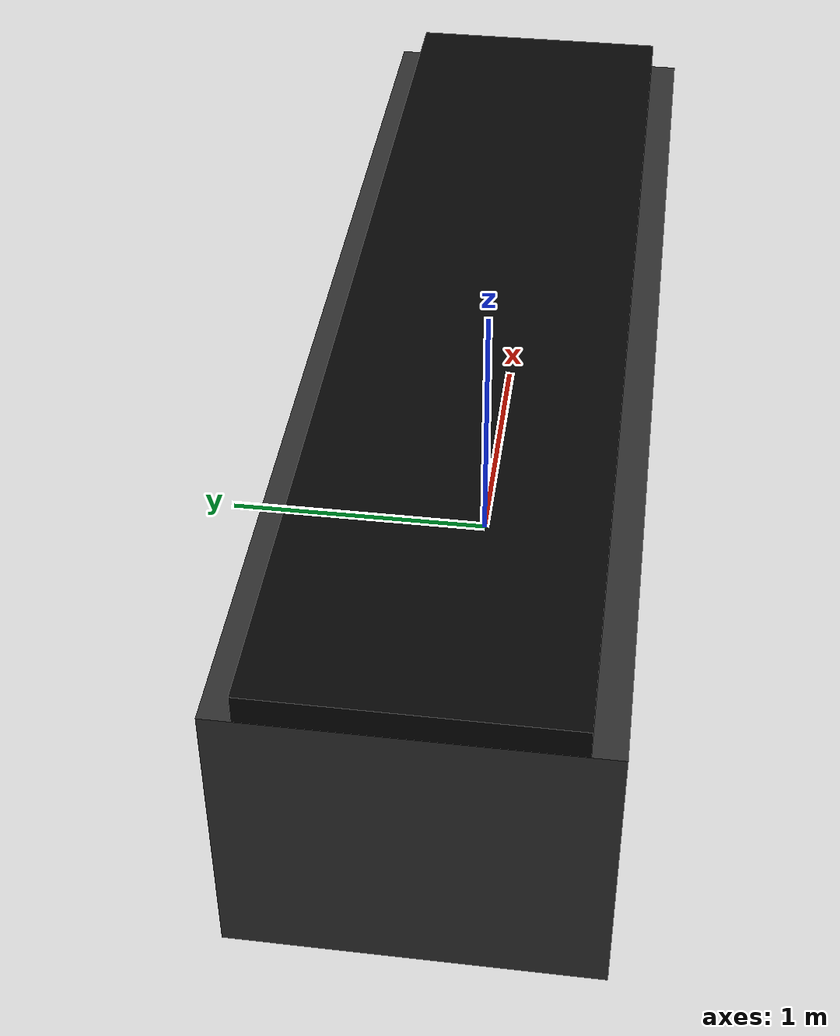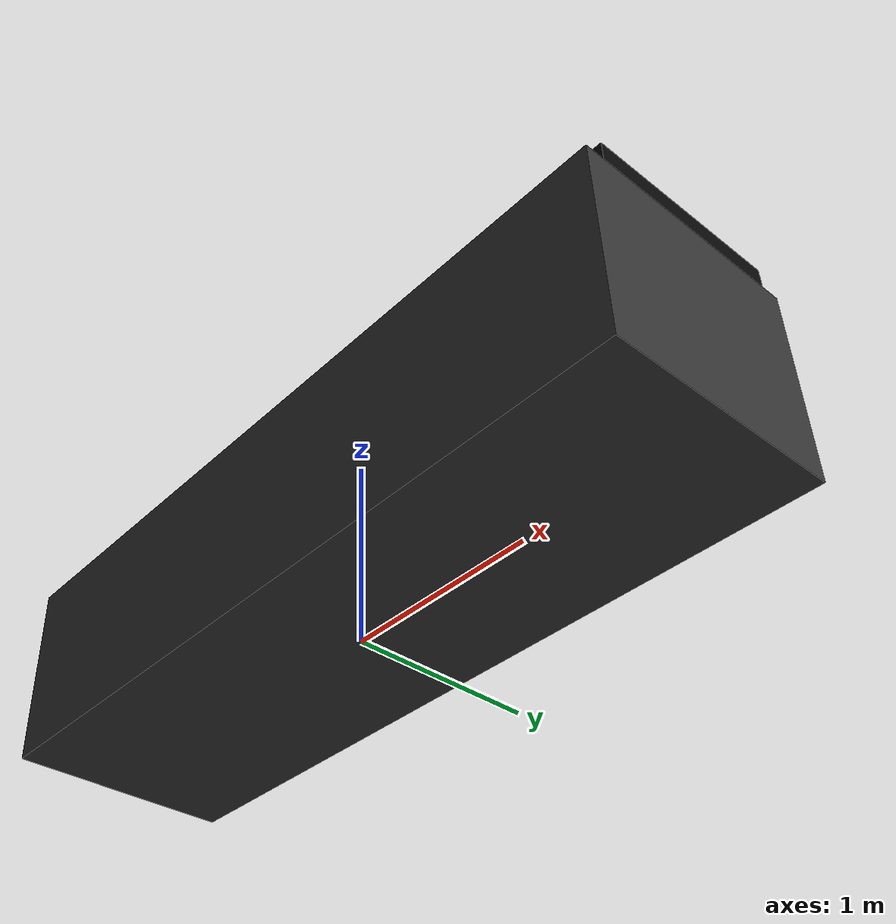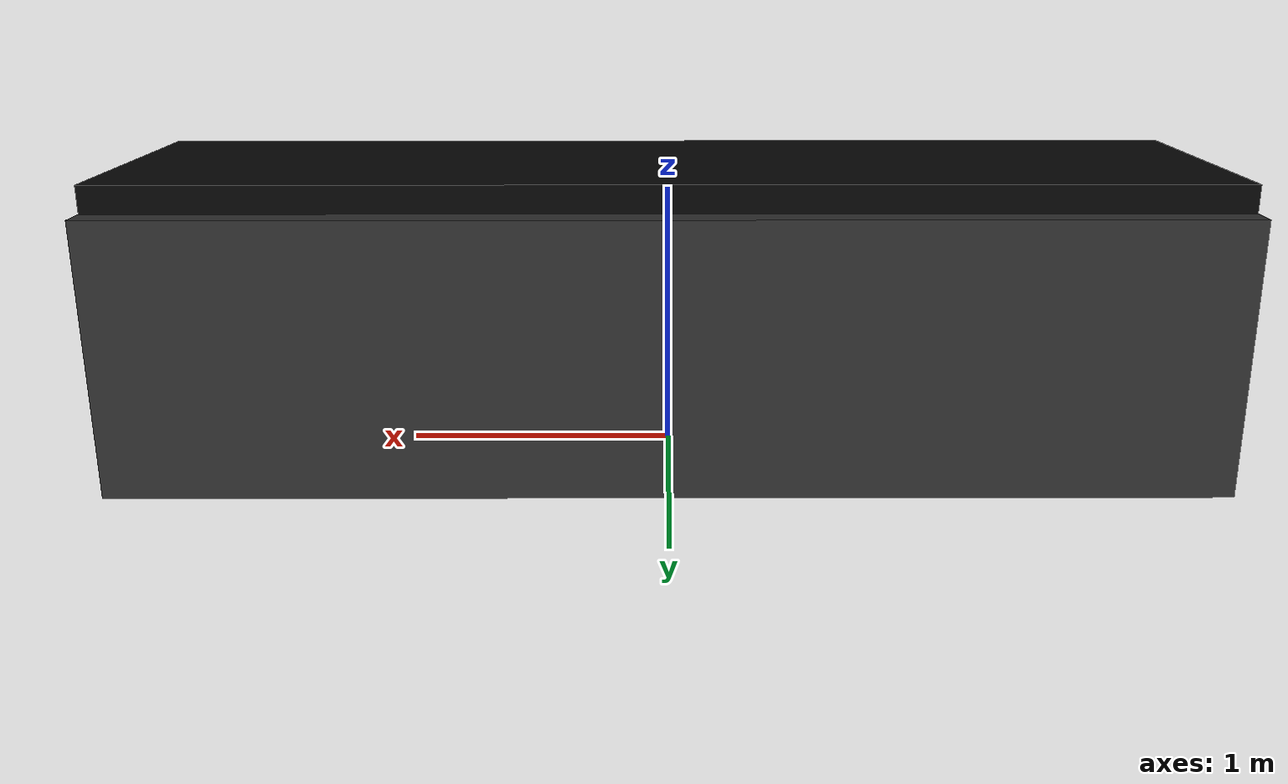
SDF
<?xml version="1.0"?>

<sdf version="1.9">

  <!-- =========================================================
       CONVEYOR MODEL
       Equipment ID: CV-001
       ========================================================= -->

  <model name="CV-001">

<static>true</static>

    <link name="frame">

      <pose>0 0 0.5 0 0 0</pose>

      <visual name="frame_visual">

        <geometry>

          <box>
            <size>4.0 1.2 1.0</size>
          </box>

        </geometry>
	<material>
    <ambient>0.12 0.12 0.12 1</ambient>
    <diffuse>0.20 0.20 0.20 1</diffuse>
    <specular>0.35 0.35 0.35 1</specular>
  </material>
      </visual>

      <collision name="frame_collision">

        <geometry>

          <box>
            <size>4.0 1.2 1.0</size>
          </box>

        </geometry>

      </collision>

    </link>

    <link name="belt">

      <pose>0 0 1.05 0 0 0</pose>

      <visual name="belt_visual">

        <geometry>

          <box>
            <size>4.0 1.0 0.1</size>
          </box>

        </geometry>
	<material>
    <ambient>0.01 0.01 0.01 1</ambient>
    <diffuse>0.03 0.03 0.03 1</diffuse>
    <specular>0.05 0.05 0.05 1</specular>
  </material>
      </visual>

      <collision name="belt_collision">

        <geometry>

          <box>
            <size>4.0 1.0 0.1</size>
          </box>

        </geometry>

      </collision>

    </link>

    <plugin
        filename="libConveyorSystem.so"
        name="virtual_factory::ConveyorSystem">
    </plugin>

  </model>

</sdf>
